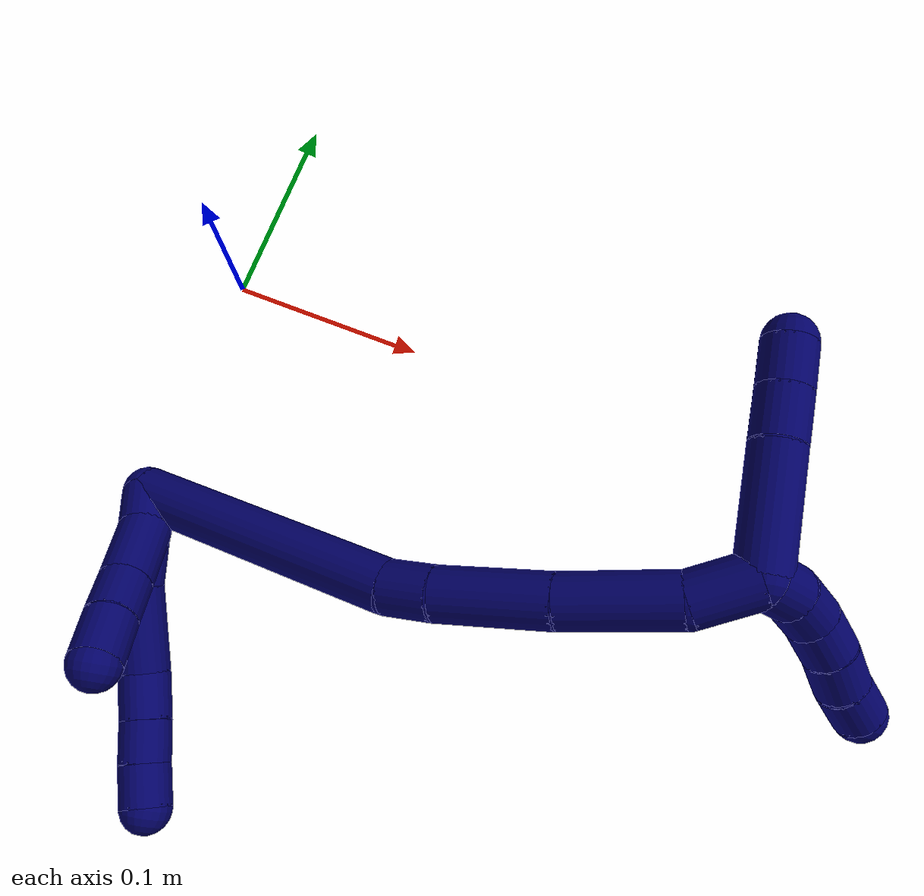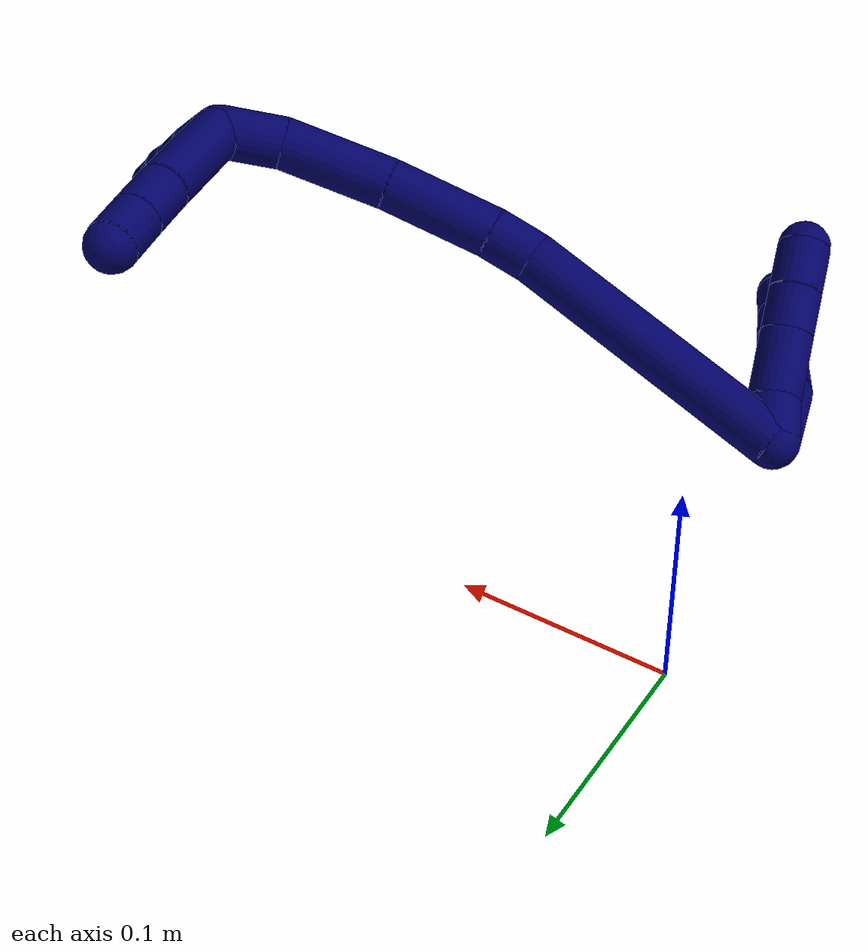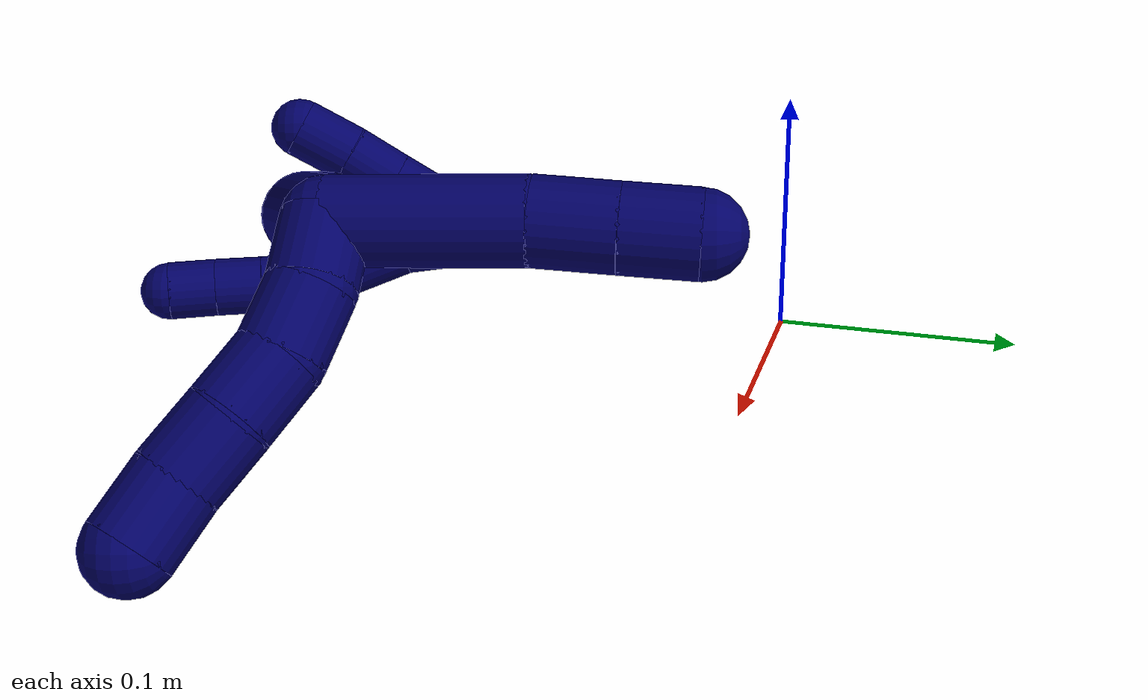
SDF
<sdf version="1.7">
 <world name="default">
  <model name="7">
   <static>0</static>
   <link name="7">
    <collision name="collision-cylinder-e_1_2_8">
     <pose>0.002101 -0.001775 0.022061 0.080273 0.094637 0.003803</pose>
     <geometry><cylinder><radius>0.0125</radius><length>0.044463</length></cylinder></geometry>
     <surface>
      <friction><ode><mu>1.16</mu><mu2>1.16</mu2><slip1>0</slip1><slip2>0</slip2></ode></friction>
      <contact><ode><kp>1e+06</kp><kd>1</kd><max_vel>0</max_vel><min_depth>0.001</min_depth></ode></contact>
     </surface>
    </collision>
    <visual name="visual-cylinder-e_1_2_8">
     <pose>0.002101 -0.001775 0.022061 0.080273 0.094637 0.003803</pose>
     <geometry><cylinder><radius>0.0125</radius><length>0.044463</length></cylinder></geometry>
     <material><ambient>0.003922 0 0.403922 1</ambient></material>
    </visual>
    <collision name="collision-cylinder-e_2_8_9">
     <pose>0.009983 -0.008952 0.063852 0.267253 0.275441 0.037258</pose>
     <geometry><cylinder><radius>0.0125</radius><length>0.042517</length></cylinder></geometry>
     <surface>
      <friction><ode><mu>1.16</mu><mu2>1.16</mu2><slip1>0</slip1><slip2>0</slip2></ode></friction>
      <contact><ode><kp>1e+06</kp><kd>1</kd><max_vel>0</max_vel><min_depth>0.001</min_depth></ode></contact>
     </surface>
    </collision>
    <visual name="visual-cylinder-e_2_8_9">
     <pose>0.009983 -0.008952 0.063852 0.267253 0.275441 0.037258</pose>
     <geometry><cylinder><radius>0.0125</radius><length>0.042517</length></cylinder></geometry>
     <material><ambient>0.003922 0 0.403922 1</ambient></material>
    </visual>
    <collision name="collision-cylinder-e_3_9_10">
     <pose>0.018598 -0.013652 0.094662 -0.063251 0.249896 -0.007947</pose>
     <geometry><cylinder><radius>0.0125</radius><length>0.022913</length></cylinder></geometry>
     <surface>
      <friction><ode><mu>1.16</mu><mu2>1.16</mu2><slip1>0</slip1><slip2>0</slip2></ode></friction>
      <contact><ode><kp>1e+06</kp><kd>1</kd><max_vel>0</max_vel><min_depth>0.001</min_depth></ode></contact>
     </surface>
    </collision>
    <visual name="visual-cylinder-e_3_9_10">
     <pose>0.018598 -0.013652 0.094662 -0.063251 0.249896 -0.007947</pose>
     <geometry><cylinder><radius>0.0125</radius><length>0.022913</length></cylinder></geometry>
     <material><ambient>0.003922 0 0.403922 1</ambient></material>
    </visual>
    <collision name="collision-cylinder-e_4_10_11">
     <pose>0.023377 -0.012298 0.115539 -0.066522 0.195621 -0.00653</pose>
     <geometry><cylinder><radius>0.0125</radius><length>0.020021</length></cylinder></geometry>
     <surface>
      <friction><ode><mu>1.16</mu><mu2>1.16</mu2><slip1>0</slip1><slip2>0</slip2></ode></friction>
      <contact><ode><kp>1e+06</kp><kd>1</kd><max_vel>0</max_vel><min_depth>0.001</min_depth></ode></contact>
     </surface>
    </collision>
    <visual name="visual-cylinder-e_4_10_11">
     <pose>0.023377 -0.012298 0.115539 -0.066522 0.195621 -0.00653</pose>
     <geometry><cylinder><radius>0.0125</radius><length>0.020021</length></cylinder></geometry>
     <material><ambient>0.003922 0 0.403922 1</ambient></material>
    </visual>
    <collision name="collision-cylinder-e_5_11_6">
     <pose>0.027805 -0.010899 0.135039 -0.076752 0.249711 -0.009638</pose>
     <geometry><cylinder><radius>0.0125</radius><length>0.020085</length></cylinder></geometry>
     <surface>
      <friction><ode><mu>1.16</mu><mu2>1.16</mu2><slip1>0</slip1><slip2>0</slip2></ode></friction>
      <contact><ode><kp>1e+06</kp><kd>1</kd><max_vel>0</max_vel><min_depth>0.001</min_depth></ode></contact>
     </surface>
    </collision>
    <visual name="visual-cylinder-e_5_11_6">
     <pose>0.027805 -0.010899 0.135039 -0.076752 0.249711 -0.009638</pose>
     <geometry><cylinder><radius>0.0125</radius><length>0.020085</length></cylinder></geometry>
     <material><ambient>0.003922 0 0.403922 1</ambient></material>
    </visual>
    <collision name="collision-cylinder-e_1_2_12">
     <pose>0.001387 0.004784 0.009537 -0.464941 0.12923 -0.030636</pose>
     <geometry><cylinder><radius>0.0125</radius><length>0.021519</length></cylinder></geometry>
     <surface>
      <friction><ode><mu>1.16</mu><mu2>1.16</mu2><slip1>0</slip1><slip2>0</slip2></ode></friction>
      <contact><ode><kp>1e+06</kp><kd>1</kd><max_vel>0</max_vel><min_depth>0.001</min_depth></ode></contact>
     </surface>
    </collision>
    <visual name="visual-cylinder-e_1_2_12">
     <pose>0.001387 0.004784 0.009537 -0.464941 0.12923 -0.030636</pose>
     <geometry><cylinder><radius>0.0125</radius><length>0.021519</length></cylinder></geometry>
     <material><ambient>0.003922 0 0.403922 1</ambient></material>
    </visual>
    <collision name="collision-cylinder-e_2_12_13">
     <pose>0.001879 0.018947 0.03272 -0.602184 -0.053959 0.01676</pose>
     <geometry><cylinder><radius>0.0125</radius><length>0.033165</length></cylinder></geometry>
     <surface>
      <friction><ode><mu>1.16</mu><mu2>1.16</mu2><slip1>0</slip1><slip2>0</slip2></ode></friction>
      <contact><ode><kp>1e+06</kp><kd>1</kd><max_vel>0</max_vel><min_depth>0.001</min_depth></ode></contact>
     </surface>
    </collision>
    <visual name="visual-cylinder-e_2_12_13">
     <pose>0.001879 0.018947 0.03272 -0.602184 -0.053959 0.01676</pose>
     <geometry><cylinder><radius>0.0125</radius><length>0.033165</length></cylinder></geometry>
     <material><ambient>0.003922 0 0.403922 1</ambient></material>
    </visual>
    <collision name="collision-cylinder-e_3_13_14">
     <pose>0.000271 0.034516 0.05517 -0.612697 -0.0662 0.020946</pose>
     <geometry><cylinder><radius>0.0125</radius><length>0.021571</length></cylinder></geometry>
     <surface>
      <friction><ode><mu>1.16</mu><mu2>1.16</mu2><slip1>0</slip1><slip2>0</slip2></ode></friction>
      <contact><ode><kp>1e+06</kp><kd>1</kd><max_vel>0</max_vel><min_depth>0.001</min_depth></ode></contact>
     </surface>
    </collision>
    <visual name="visual-cylinder-e_3_13_14">
     <pose>0.000271 0.034516 0.05517 -0.612697 -0.0662 0.020946</pose>
     <geometry><cylinder><radius>0.0125</radius><length>0.021571</length></cylinder></geometry>
     <material><ambient>0.003922 0 0.403922 1</ambient></material>
    </visual>
    <collision name="collision-cylinder-e_4_14_5">
     <pose>-0.001011 0.046916 0.074076 -0.551315 -0.047911 0.013555</pose>
     <geometry><cylinder><radius>0.0125</radius><length>0.023745</length></cylinder></geometry>
     <surface>
      <friction><ode><mu>1.16</mu><mu2>1.16</mu2><slip1>0</slip1><slip2>0</slip2></ode></friction>
      <contact><ode><kp>1e+06</kp><kd>1</kd><max_vel>0</max_vel><min_depth>0.001</min_depth></ode></contact>
     </surface>
    </collision>
    <visual name="visual-cylinder-e_4_14_5">
     <pose>-0.001011 0.046916 0.074076 -0.551315 -0.047911 0.013555</pose>
     <geometry><cylinder><radius>0.0125</radius><length>0.023745</length></cylinder></geometry>
     <material><ambient>0.003922 0 0.403922 1</ambient></material>
    </visual>
    <collision name="collision-cylinder-e_1_2_15">
     <pose>0.05647 0.038529 0.01597 -1.17785 0.93465 -0.650233</pose>
     <geometry><cylinder><radius>0.0125</radius><length>0.140405</length></cylinder></geometry>
     <surface>
      <friction><ode><mu>1.16</mu><mu2>1.16</mu2><slip1>0</slip1><slip2>0</slip2></ode></friction>
      <contact><ode><kp>1e+06</kp><kd>1</kd><max_vel>0</max_vel><min_depth>0.001</min_depth></ode></contact>
     </surface>
    </collision>
    <visual name="visual-cylinder-e_1_2_15">
     <pose>0.05647 0.038529 0.01597 -1.17785 0.93465 -0.650233</pose>
     <geometry><cylinder><radius>0.0125</radius><length>0.140405</length></cylinder></geometry>
     <material><ambient>0.003922 0 0.403922 1</ambient></material>
    </visual>
    <collision name="collision-cylinder-e_2_15_16">
     <pose>0.122399 0.083745 0.032194 -1.53285 0.954994 -0.924351</pose>
     <geometry><cylinder><radius>0.0125</radius><length>0.023174</length></cylinder></geometry>
     <surface>
      <friction><ode><mu>1.16</mu><mu2>1.16</mu2><slip1>0</slip1><slip2>0</slip2></ode></friction>
      <contact><ode><kp>1e+06</kp><kd>1</kd><max_vel>0</max_vel><min_depth>0.001</min_depth></ode></contact>
     </surface>
    </collision>
    <visual name="visual-cylinder-e_2_15_16">
     <pose>0.122399 0.083745 0.032194 -1.53285 0.954994 -0.924351</pose>
     <geometry><cylinder><radius>0.0125</radius><length>0.023174</length></cylinder></geometry>
     <material><ambient>0.003922 0 0.403922 1</ambient></material>
    </visual>
    <collision name="collision-cylinder-e_3_16_17">
     <pose>0.154437 0.104231 0.030944 -1.67938 1.01965 -1.11488</pose>
     <geometry><cylinder><radius>0.0125</radius><length>0.053008</length></cylinder></geometry>
     <surface>
      <friction><ode><mu>1.16</mu><mu2>1.16</mu2><slip1>0</slip1><slip2>0</slip2></ode></friction>
      <contact><ode><kp>1e+06</kp><kd>1</kd><max_vel>0</max_vel><min_depth>0.001</min_depth></ode></contact>
     </surface>
    </collision>
    <visual name="visual-cylinder-e_3_16_17">
     <pose>0.154437 0.104231 0.030944 -1.67938 1.01965 -1.11488</pose>
     <geometry><cylinder><radius>0.0125</radius><length>0.053008</length></cylinder></geometry>
     <material><ambient>0.003922 0 0.403922 1</ambient></material>
    </visual>
    <collision name="collision-cylinder-e_4_17_18">
     <pose>0.199938 0.131036 0.025925 -1.83474 1.03938 -1.28354</pose>
     <geometry><cylinder><radius>0.0125</radius><length>0.053177</length></cylinder></geometry>
     <surface>
      <friction><ode><mu>1.16</mu><mu2>1.16</mu2><slip1>0</slip1><slip2>0</slip2></ode></friction>
      <contact><ode><kp>1e+06</kp><kd>1</kd><max_vel>0</max_vel><min_depth>0.001</min_depth></ode></contact>
     </surface>
    </collision>
    <visual name="visual-cylinder-e_4_17_18">
     <pose>0.199938 0.131036 0.025925 -1.83474 1.03938 -1.28354</pose>
     <geometry><cylinder><radius>0.0125</radius><length>0.053177</length></cylinder></geometry>
     <material><ambient>0.003922 0 0.403922 1</ambient></material>
    </visual>
    <collision name="collision-cylinder-e_5_18_1">
     <pose>0.235091 0.150496 0.016301 -2.32877 0.942553 -1.73892</pose>
     <geometry><cylinder><radius>0.0125</radius><length>0.030236</length></cylinder></geometry>
     <surface>
      <friction><ode><mu>1.16</mu><mu2>1.16</mu2><slip1>0</slip1><slip2>0</slip2></ode></friction>
      <contact><ode><kp>1e+06</kp><kd>1</kd><max_vel>0</max_vel><min_depth>0.001</min_depth></ode></contact>
     </surface>
    </collision>
    <visual name="visual-cylinder-e_5_18_1">
     <pose>0.235091 0.150496 0.016301 -2.32877 0.942553 -1.73892</pose>
     <geometry><cylinder><radius>0.0125</radius><length>0.030236</length></cylinder></geometry>
     <material><ambient>0.003922 0 0.403922 1</ambient></material>
    </visual>
    <collision name="collision-cylinder-e_1_1_19">
     <pose>0.255911 0.151914 0.011138 1.38524 1.03303 0.880774</pose>
     <geometry><cylinder><radius>0.0125</radius><length>0.02</length></cylinder></geometry>
     <surface>
      <friction><ode><mu>1.16</mu><mu2>1.16</mu2><slip1>0</slip1><slip2>0</slip2></ode></friction>
      <contact><ode><kp>1e+06</kp><kd>1</kd><max_vel>0</max_vel><min_depth>0.001</min_depth></ode></contact>
     </surface>
    </collision>
    <visual name="visual-cylinder-e_1_1_19">
     <pose>0.255911 0.151914 0.011138 1.38524 1.03303 0.880774</pose>
     <geometry><cylinder><radius>0.0125</radius><length>0.02</length></cylinder></geometry>
     <material><ambient>0.003922 0 0.403922 1</ambient></material>
    </visual>
    <collision name="collision-cylinder-e_2_19_20">
     <pose>0.272227 0.141425 0.015329 1.03403 0.883146 0.525153</pose>
     <geometry><cylinder><radius>0.0125</radius><length>0.02</length></cylinder></geometry>
     <surface>
      <friction><ode><mu>1.16</mu><mu2>1.16</mu2><slip1>0</slip1><slip2>0</slip2></ode></friction>
      <contact><ode><kp>1e+06</kp><kd>1</kd><max_vel>0</max_vel><min_depth>0.001</min_depth></ode></contact>
     </surface>
    </collision>
    <visual name="visual-cylinder-e_2_19_20">
     <pose>0.272227 0.141425 0.015329 1.03403 0.883146 0.525153</pose>
     <geometry><cylinder><radius>0.0125</radius><length>0.02</length></cylinder></geometry>
     <material><ambient>0.003922 0 0.403922 1</ambient></material>
    </visual>
    <collision name="collision-cylinder-e_3_20_21">
     <pose>0.287103 0.131644 0.024068 0.667094 0.796451 0.289502</pose>
     <geometry><cylinder><radius>0.0125</radius><length>0.02</length></cylinder></geometry>
     <surface>
      <friction><ode><mu>1.16</mu><mu2>1.16</mu2><slip1>0</slip1><slip2>0</slip2></ode></friction>
      <contact><ode><kp>1e+06</kp><kd>1</kd><max_vel>0</max_vel><min_depth>0.001</min_depth></ode></contact>
     </surface>
    </collision>
    <visual name="visual-cylinder-e_3_20_21">
     <pose>0.287103 0.131644 0.024068 0.667094 0.796451 0.289502</pose>
     <geometry><cylinder><radius>0.0125</radius><length>0.02</length></cylinder></geometry>
     <material><ambient>0.003922 0 0.403922 1</ambient></material>
    </visual>
    <collision name="collision-cylinder-e_4_21_22">
     <pose>0.300488 0.122297 0.035554 0.697369 0.67328 0.253089</pose>
     <geometry><cylinder><radius>0.0125</radius><length>0.02</length></cylinder></geometry>
     <surface>
      <friction><ode><mu>1.16</mu><mu2>1.16</mu2><slip1>0</slip1><slip2>0</slip2></ode></friction>
      <contact><ode><kp>1e+06</kp><kd>1</kd><max_vel>0</max_vel><min_depth>0.001</min_depth></ode></contact>
     </surface>
    </collision>
    <visual name="visual-cylinder-e_4_21_22">
     <pose>0.300488 0.122297 0.035554 0.697369 0.67328 0.253089</pose>
     <geometry><cylinder><radius>0.0125</radius><length>0.02</length></cylinder></geometry>
     <material><ambient>0.003922 0 0.403922 1</ambient></material>
    </visual>
    <collision name="collision-cylinder-e_5_22_4">
     <pose>0.313928 0.112415 0.046491 0.777057 0.804538 0.344861</pose>
     <geometry><cylinder><radius>0.0125</radius><length>0.02</length></cylinder></geometry>
     <surface>
      <friction><ode><mu>1.16</mu><mu2>1.16</mu2><slip1>0</slip1><slip2>0</slip2></ode></friction>
      <contact><ode><kp>1e+06</kp><kd>1</kd><max_vel>0</max_vel><min_depth>0.001</min_depth></ode></contact>
     </surface>
    </collision>
    <visual name="visual-cylinder-e_5_22_4">
     <pose>0.313928 0.112415 0.046491 0.777057 0.804538 0.344861</pose>
     <geometry><cylinder><radius>0.0125</radius><length>0.02</length></cylinder></geometry>
     <material><ambient>0.003922 0 0.403922 1</ambient></material>
    </visual>
    <collision name="collision-cylinder-e_1_1_23">
     <pose>0.247629 0.156922 -0.017128 3.14064 0.011234 2.97195</pose>
     <geometry><cylinder><radius>0.0125</radius><length>0.054646</length></cylinder></geometry>
     <surface>
      <friction><ode><mu>1.16</mu><mu2>1.16</mu2><slip1>0</slip1><slip2>0</slip2></ode></friction>
      <contact><ode><kp>1e+06</kp><kd>1</kd><max_vel>0</max_vel><min_depth>0.001</min_depth></ode></contact>
     </surface>
    </collision>
    <visual name="visual-cylinder-e_1_1_23">
     <pose>0.247629 0.156922 -0.017128 3.14064 0.011234 2.97195</pose>
     <geometry><cylinder><radius>0.0125</radius><length>0.054646</length></cylinder></geometry>
     <material><ambient>0.003922 0 0.403922 1</ambient></material>
    </visual>
    <collision name="collision-cylinder-e_2_23_24">
     <pose>0.248557 0.15606 -0.056263 3.07094 0.052351 1.27524</pose>
     <geometry><cylinder><radius>0.0125</radius><length>0.023719</length></cylinder></geometry>
     <surface>
      <friction><ode><mu>1.16</mu><mu2>1.16</mu2><slip1>0</slip1><slip2>0</slip2></ode></friction>
      <contact><ode><kp>1e+06</kp><kd>1</kd><max_vel>0</max_vel><min_depth>0.001</min_depth></ode></contact>
     </surface>
    </collision>
    <visual name="visual-cylinder-e_2_23_24">
     <pose>0.248557 0.15606 -0.056263 3.07094 0.052351 1.27524</pose>
     <geometry><cylinder><radius>0.0125</radius><length>0.023719</length></cylinder></geometry>
     <material><ambient>0.003922 0 0.403922 1</ambient></material>
    </visual>
    <collision name="collision-cylinder-e_3_24_3">
     <pose>0.249613 0.154445 -0.078857 3.06944 0.040291 1.01828</pose>
     <geometry><cylinder><radius>0.0125</radius><length>0.021635</length></cylinder></geometry>
     <surface>
      <friction><ode><mu>1.16</mu><mu2>1.16</mu2><slip1>0</slip1><slip2>0</slip2></ode></friction>
      <contact><ode><kp>1e+06</kp><kd>1</kd><max_vel>0</max_vel><min_depth>0.001</min_depth></ode></contact>
     </surface>
    </collision>
    <visual name="visual-cylinder-e_3_24_3">
     <pose>0.249613 0.154445 -0.078857 3.06944 0.040291 1.01828</pose>
     <geometry><cylinder><radius>0.0125</radius><length>0.021635</length></cylinder></geometry>
     <material><ambient>0.003922 0 0.403922 1</ambient></material>
    </visual>
    <collision name="collision-sphere-3">
     <pose>0.250049 0.153666 -0.089638 0 -0 0</pose>
     <geometry><sphere><radius>0.0125</radius></sphere></geometry>
     <surface>
      <friction><ode><mu>1.16</mu><mu2>1.16</mu2><slip1>0</slip1><slip2>0</slip2></ode></friction>
      <contact><ode><kp>1e+06</kp><kd>1</kd><max_vel>0</max_vel><min_depth>0.001</min_depth></ode></contact>
     </surface>
    </collision>
    <visual name="visual-sphere-3">
     <pose>0.250049 0.153666 -0.089638 0 -0 0</pose>
     <geometry><sphere><radius>0.0125</radius></sphere></geometry>
     <material><ambient>0.003922 0 0.403922 1</ambient></material>
    </visual>
    <collision name="collision-sphere-24">
     <pose>0.249178 0.155224 -0.068077 0 -0 0</pose>
     <geometry><sphere><radius>0.0125</radius></sphere></geometry>
     <surface>
      <friction><ode><mu>1.16</mu><mu2>1.16</mu2><slip1>0</slip1><slip2>0</slip2></ode></friction>
      <contact><ode><kp>1e+06</kp><kd>1</kd><max_vel>0</max_vel><min_depth>0.001</min_depth></ode></contact>
     </surface>
    </collision>
    <visual name="visual-sphere-24">
     <pose>0.249178 0.155224 -0.068077 0 -0 0</pose>
     <geometry><sphere><radius>0.0125</radius></sphere></geometry>
     <material><ambient>0.003922 0 0.403922 1</ambient></material>
    </visual>
    <collision name="collision-sphere-23">
     <pose>0.247936 0.156896 -0.044449 0 -0 0</pose>
     <geometry><sphere><radius>0.0125</radius></sphere></geometry>
     <surface>
      <friction><ode><mu>1.16</mu><mu2>1.16</mu2><slip1>0</slip1><slip2>0</slip2></ode></friction>
      <contact><ode><kp>1e+06</kp><kd>1</kd><max_vel>0</max_vel><min_depth>0.001</min_depth></ode></contact>
     </surface>
    </collision>
    <visual name="visual-sphere-23">
     <pose>0.247936 0.156896 -0.044449 0 -0 0</pose>
     <geometry><sphere><radius>0.0125</radius></sphere></geometry>
     <material><ambient>0.003922 0 0.403922 1</ambient></material>
    </visual>
    <collision name="collision-sphere-4">
     <pose>0.321133 0.107552 0.051435 0 -0 0</pose>
     <geometry><sphere><radius>0.0125</radius></sphere></geometry>
     <surface>
      <friction><ode><mu>1.16</mu><mu2>1.16</mu2><slip1>0</slip1><slip2>0</slip2></ode></friction>
      <contact><ode><kp>1e+06</kp><kd>1</kd><max_vel>0</max_vel><min_depth>0.001</min_depth></ode></contact>
     </surface>
    </collision>
    <visual name="visual-sphere-4">
     <pose>0.321133 0.107552 0.051435 0 -0 0</pose>
     <geometry><sphere><radius>0.0125</radius></sphere></geometry>
     <material><ambient>0.003922 0 0.403922 1</ambient></material>
    </visual>
    <collision name="collision-sphere-22">
     <pose>0.306723 0.117277 0.041547 0 -0 0</pose>
     <geometry><sphere><radius>0.0125</radius></sphere></geometry>
     <surface>
      <friction><ode><mu>1.16</mu><mu2>1.16</mu2><slip1>0</slip1><slip2>0</slip2></ode></friction>
      <contact><ode><kp>1e+06</kp><kd>1</kd><max_vel>0</max_vel><min_depth>0.001</min_depth></ode></contact>
     </surface>
    </collision>
    <visual name="visual-sphere-22">
     <pose>0.306723 0.117277 0.041547 0 -0 0</pose>
     <geometry><sphere><radius>0.0125</radius></sphere></geometry>
     <material><ambient>0.003922 0 0.403922 1</ambient></material>
    </visual>
    <collision name="collision-sphere-21">
     <pose>0.294252 0.127318 0.029562 0 -0 0</pose>
     <geometry><sphere><radius>0.0125</radius></sphere></geometry>
     <surface>
      <friction><ode><mu>1.16</mu><mu2>1.16</mu2><slip1>0</slip1><slip2>0</slip2></ode></friction>
      <contact><ode><kp>1e+06</kp><kd>1</kd><max_vel>0</max_vel><min_depth>0.001</min_depth></ode></contact>
     </surface>
    </collision>
    <visual name="visual-sphere-21">
     <pose>0.294252 0.127318 0.029562 0 -0 0</pose>
     <geometry><sphere><radius>0.0125</radius></sphere></geometry>
     <material><ambient>0.003922 0 0.403922 1</ambient></material>
    </visual>
    <collision name="collision-sphere-20">
     <pose>0.279954 0.135971 0.018575 0 -0 0</pose>
     <geometry><sphere><radius>0.0125</radius></sphere></geometry>
     <surface>
      <friction><ode><mu>1.16</mu><mu2>1.16</mu2><slip1>0</slip1><slip2>0</slip2></ode></friction>
      <contact><ode><kp>1e+06</kp><kd>1</kd><max_vel>0</max_vel><min_depth>0.001</min_depth></ode></contact>
     </surface>
    </collision>
    <visual name="visual-sphere-20">
     <pose>0.279954 0.135971 0.018575 0 -0 0</pose>
     <geometry><sphere><radius>0.0125</radius></sphere></geometry>
     <material><ambient>0.003922 0 0.403922 1</ambient></material>
    </visual>
    <collision name="collision-sphere-6">
     <pose>0.030287 -0.010153 0.144742 0 -0 0</pose>
     <geometry><sphere><radius>0.0125</radius></sphere></geometry>
     <surface>
      <friction><ode><mu>1.16</mu><mu2>1.16</mu2><slip1>0</slip1><slip2>0</slip2></ode></friction>
      <contact><ode><kp>1e+06</kp><kd>1</kd><max_vel>0</max_vel><min_depth>0.001</min_depth></ode></contact>
     </surface>
    </collision>
    <visual name="visual-sphere-6">
     <pose>0.030287 -0.010153 0.144742 0 -0 0</pose>
     <geometry><sphere><radius>0.0125</radius></sphere></geometry>
     <material><ambient>0.003922 0 0.403922 1</ambient></material>
    </visual>
    <collision name="collision-sphere-11">
     <pose>0.025323 -0.011645 0.125337 0 -0 0</pose>
     <geometry><sphere><radius>0.0125</radius></sphere></geometry>
     <surface>
      <friction><ode><mu>1.16</mu><mu2>1.16</mu2><slip1>0</slip1><slip2>0</slip2></ode></friction>
      <contact><ode><kp>1e+06</kp><kd>1</kd><max_vel>0</max_vel><min_depth>0.001</min_depth></ode></contact>
     </surface>
    </collision>
    <visual name="visual-sphere-11">
     <pose>0.025323 -0.011645 0.125337 0 -0 0</pose>
     <geometry><sphere><radius>0.0125</radius></sphere></geometry>
     <material><ambient>0.003922 0 0.403922 1</ambient></material>
    </visual>
    <collision name="collision-sphere-10">
     <pose>0.021432 -0.012951 0.105741 0 -0 0</pose>
     <geometry><sphere><radius>0.0125</radius></sphere></geometry>
     <surface>
      <friction><ode><mu>1.16</mu><mu2>1.16</mu2><slip1>0</slip1><slip2>0</slip2></ode></friction>
      <contact><ode><kp>1e+06</kp><kd>1</kd><max_vel>0</max_vel><min_depth>0.001</min_depth></ode></contact>
     </surface>
    </collision>
    <visual name="visual-sphere-10">
     <pose>0.021432 -0.012951 0.105741 0 -0 0</pose>
     <geometry><sphere><radius>0.0125</radius></sphere></geometry>
     <material><ambient>0.003922 0 0.403922 1</ambient></material>
    </visual>
    <collision name="collision-sphere-9">
     <pose>0.015765 -0.014354 0.083583 0 -0 0</pose>
     <geometry><sphere><radius>0.0125</radius></sphere></geometry>
     <surface>
      <friction><ode><mu>1.16</mu><mu2>1.16</mu2><slip1>0</slip1><slip2>0</slip2></ode></friction>
      <contact><ode><kp>1e+06</kp><kd>1</kd><max_vel>0</max_vel><min_depth>0.001</min_depth></ode></contact>
     </surface>
    </collision>
    <visual name="visual-sphere-9">
     <pose>0.015765 -0.014354 0.083583 0 -0 0</pose>
     <geometry><sphere><radius>0.0125</radius></sphere></geometry>
     <material><ambient>0.003922 0 0.403922 1</ambient></material>
    </visual>
    <collision name="collision-sphere-2">
     <geometry><sphere><radius>0.0125</radius></sphere></geometry>
     <surface>
      <friction><ode><mu>1.16</mu><mu2>1.16</mu2><slip1>0</slip1><slip2>0</slip2></ode></friction>
      <contact><ode><kp>1e+06</kp><kd>1</kd><max_vel>0</max_vel><min_depth>0.001</min_depth></ode></contact>
     </surface>
    </collision>
    <visual name="visual-sphere-2">
     <geometry><sphere><radius>0.0125</radius></sphere></geometry>
     <material><ambient>0.003922 0 0.403922 1</ambient></material>
    </visual>
    <collision name="collision-sphere-19">
     <pose>0.2645 0.14688 0.012083 0 -0 0</pose>
     <geometry><sphere><radius>0.0125</radius></sphere></geometry>
     <surface>
      <friction><ode><mu>1.16</mu><mu2>1.16</mu2><slip1>0</slip1><slip2>0</slip2></ode></friction>
      <contact><ode><kp>1e+06</kp><kd>1</kd><max_vel>0</max_vel><min_depth>0.001</min_depth></ode></contact>
     </surface>
    </collision>
    <visual name="visual-sphere-19">
     <pose>0.2645 0.14688 0.012083 0 -0 0</pose>
     <geometry><sphere><radius>0.0125</radius></sphere></geometry>
     <material><ambient>0.003922 0 0.403922 1</ambient></material>
    </visual>
    <collision name="collision-sphere-8">
     <pose>0.004202 -0.003549 0.044121 0 -0 0</pose>
     <geometry><sphere><radius>0.0125</radius></sphere></geometry>
     <surface>
      <friction><ode><mu>1.16</mu><mu2>1.16</mu2><slip1>0</slip1><slip2>0</slip2></ode></friction>
      <contact><ode><kp>1e+06</kp><kd>1</kd><max_vel>0</max_vel><min_depth>0.001</min_depth></ode></contact>
     </surface>
    </collision>
    <visual name="visual-sphere-8">
     <pose>0.004202 -0.003549 0.044121 0 -0 0</pose>
     <geometry><sphere><radius>0.0125</radius></sphere></geometry>
     <material><ambient>0.003922 0 0.403922 1</ambient></material>
    </visual>
    <collision name="collision-sphere-12">
     <pose>0.002773 0.009568 0.019074 0 -0 0</pose>
     <geometry><sphere><radius>0.0125</radius></sphere></geometry>
     <surface>
      <friction><ode><mu>1.16</mu><mu2>1.16</mu2><slip1>0</slip1><slip2>0</slip2></ode></friction>
      <contact><ode><kp>1e+06</kp><kd>1</kd><max_vel>0</max_vel><min_depth>0.001</min_depth></ode></contact>
     </surface>
    </collision>
    <visual name="visual-sphere-12">
     <pose>0.002773 0.009568 0.019074 0 -0 0</pose>
     <geometry><sphere><radius>0.0125</radius></sphere></geometry>
     <material><ambient>0.003922 0 0.403922 1</ambient></material>
    </visual>
    <collision name="collision-sphere-13">
     <pose>0.000985 0.028327 0.046366 0 -0 0</pose>
     <geometry><sphere><radius>0.0125</radius></sphere></geometry>
     <surface>
      <friction><ode><mu>1.16</mu><mu2>1.16</mu2><slip1>0</slip1><slip2>0</slip2></ode></friction>
      <contact><ode><kp>1e+06</kp><kd>1</kd><max_vel>0</max_vel><min_depth>0.001</min_depth></ode></contact>
     </surface>
    </collision>
    <visual name="visual-sphere-13">
     <pose>0.000985 0.028327 0.046366 0 -0 0</pose>
     <geometry><sphere><radius>0.0125</radius></sphere></geometry>
     <material><ambient>0.003922 0 0.403922 1</ambient></material>
    </visual>
    <collision name="collision-sphere-14">
     <pose>-0.000442 0.040704 0.063974 0 -0 0</pose>
     <geometry><sphere><radius>0.0125</radius></sphere></geometry>
     <surface>
      <friction><ode><mu>1.16</mu><mu2>1.16</mu2><slip1>0</slip1><slip2>0</slip2></ode></friction>
      <contact><ode><kp>1e+06</kp><kd>1</kd><max_vel>0</max_vel><min_depth>0.001</min_depth></ode></contact>
     </surface>
    </collision>
    <visual name="visual-sphere-14">
     <pose>-0.000442 0.040704 0.063974 0 -0 0</pose>
     <geometry><sphere><radius>0.0125</radius></sphere></geometry>
     <material><ambient>0.003922 0 0.403922 1</ambient></material>
    </visual>
    <collision name="collision-sphere-5">
     <pose>-0.00158 0.053128 0.084178 0 -0 0</pose>
     <geometry><sphere><radius>0.0125</radius></sphere></geometry>
     <surface>
      <friction><ode><mu>1.16</mu><mu2>1.16</mu2><slip1>0</slip1><slip2>0</slip2></ode></friction>
      <contact><ode><kp>1e+06</kp><kd>1</kd><max_vel>0</max_vel><min_depth>0.001</min_depth></ode></contact>
     </surface>
    </collision>
    <visual name="visual-sphere-5">
     <pose>-0.00158 0.053128 0.084178 0 -0 0</pose>
     <geometry><sphere><radius>0.0125</radius></sphere></geometry>
     <material><ambient>0.003922 0 0.403922 1</ambient></material>
    </visual>
    <collision name="collision-sphere-15">
     <pose>0.112941 0.077057 0.03194 0 -0 0</pose>
     <geometry><sphere><radius>0.0125</radius></sphere></geometry>
     <surface>
      <friction><ode><mu>1.16</mu><mu2>1.16</mu2><slip1>0</slip1><slip2>0</slip2></ode></friction>
      <contact><ode><kp>1e+06</kp><kd>1</kd><max_vel>0</max_vel><min_depth>0.001</min_depth></ode></contact>
     </surface>
    </collision>
    <visual name="visual-sphere-15">
     <pose>0.112941 0.077057 0.03194 0 -0 0</pose>
     <geometry><sphere><radius>0.0125</radius></sphere></geometry>
     <material><ambient>0.003922 0 0.403922 1</ambient></material>
    </visual>
    <collision name="collision-sphere-16">
     <pose>0.131857 0.090433 0.032448 0 -0 0</pose>
     <geometry><sphere><radius>0.0125</radius></sphere></geometry>
     <surface>
      <friction><ode><mu>1.16</mu><mu2>1.16</mu2><slip1>0</slip1><slip2>0</slip2></ode></friction>
      <contact><ode><kp>1e+06</kp><kd>1</kd><max_vel>0</max_vel><min_depth>0.001</min_depth></ode></contact>
     </surface>
    </collision>
    <visual name="visual-sphere-16">
     <pose>0.131857 0.090433 0.032448 0 -0 0</pose>
     <geometry><sphere><radius>0.0125</radius></sphere></geometry>
     <material><ambient>0.003922 0 0.403922 1</ambient></material>
    </visual>
    <collision name="collision-sphere-17">
     <pose>0.177016 0.118028 0.02944 0 -0 0</pose>
     <geometry><sphere><radius>0.0125</radius></sphere></geometry>
     <surface>
      <friction><ode><mu>1.16</mu><mu2>1.16</mu2><slip1>0</slip1><slip2>0</slip2></ode></friction>
      <contact><ode><kp>1e+06</kp><kd>1</kd><max_vel>0</max_vel><min_depth>0.001</min_depth></ode></contact>
     </surface>
    </collision>
    <visual name="visual-sphere-17">
     <pose>0.177016 0.118028 0.02944 0 -0 0</pose>
     <geometry><sphere><radius>0.0125</radius></sphere></geometry>
     <material><ambient>0.003922 0 0.403922 1</ambient></material>
    </visual>
    <collision name="collision-sphere-18">
     <pose>0.22286 0.144043 0.022409 0 -0 0</pose>
     <geometry><sphere><radius>0.0125</radius></sphere></geometry>
     <surface>
      <friction><ode><mu>1.16</mu><mu2>1.16</mu2><slip1>0</slip1><slip2>0</slip2></ode></friction>
      <contact><ode><kp>1e+06</kp><kd>1</kd><max_vel>0</max_vel><min_depth>0.001</min_depth></ode></contact>
     </surface>
    </collision>
    <visual name="visual-sphere-18">
     <pose>0.22286 0.144043 0.022409 0 -0 0</pose>
     <geometry><sphere><radius>0.0125</radius></sphere></geometry>
     <material><ambient>0.003922 0 0.403922 1</ambient></material>
    </visual>
    <collision name="collision-sphere-1">
     <pose>0.247323 0.156948 0.010193 0 -0 0</pose>
     <geometry><sphere><radius>0.0125</radius></sphere></geometry>
     <surface>
      <friction><ode><mu>1.16</mu><mu2>1.16</mu2><slip1>0</slip1><slip2>0</slip2></ode></friction>
      <contact><ode><kp>1e+06</kp><kd>1</kd><max_vel>0</max_vel><min_depth>0.001</min_depth></ode></contact>
     </surface>
    </collision>
    <visual name="visual-sphere-1">
     <pose>0.247323 0.156948 0.010193 0 -0 0</pose>
     <geometry><sphere><radius>0.0125</radius></sphere></geometry>
     <material><ambient>0.003922 0 0.403922 1</ambient></material>
    </visual>
    <inertial>
     <pose>0.122877 0.072745 0.027073 0 -0 0</pose>
     <mass>0.75</mass>
     <inertia>
      <ixx>7.3e-05</ixx>
      <ixy>0</ixy>
      <ixz>0</ixz>
      <iyy>0.000171</iyy>
      <iyz>0</iyz>
      <izz>-0.000361</izz>
     </inertia>
    </inertial>
   </link>
   <pose>0.012419 -0.124117 0.033338 1.60108 0.220427 0.213486</pose>
  </model>
 </world>
</sdf>
